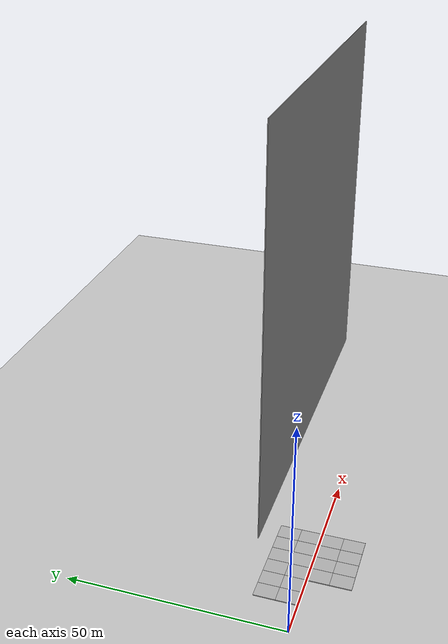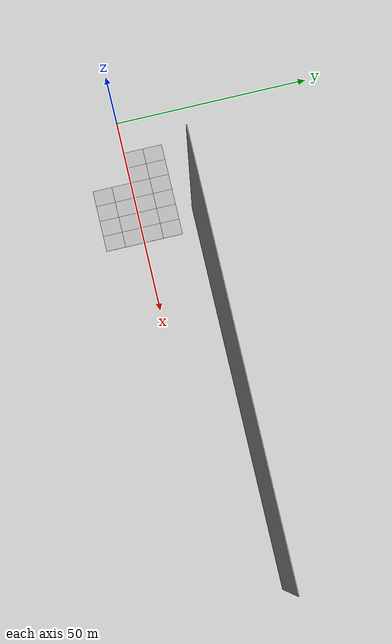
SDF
<sdf version="1.4">
 <world name="default">
  <model name="ground_plane">
   <static>1</static>
   <link name="link">
    <collision name="collision">
     <geometry><plane><normal>0 0 1</normal><size>100 100</size></plane></geometry>
     <surface><friction><ode><mu>100</mu><mu2>50</mu2></ode></friction></surface>
    </collision>
    <visual name="visual">
     <cast_shadows>0</cast_shadows>
     <geometry><plane><normal>0 0 1</normal><size>100 100</size></plane></geometry>
     <material>
      <script><uri>file://media/materials/scripts/gazebo.material</uri><name>Gazebo/Grey</name></script>
     </material>
    </visual>
    <velocity_decay><linear>0</linear><angular>0</angular></velocity_decay>
   </link>
   <pose>17 -17 0 0 -0 0</pose>
  </model>
  <model name="mud_box_3">
   <static>1</static>
   <link name="link">
    <collision name="collision"><geometry><box><size>8 10 0.2</size></box></geometry></collision>
    <visual name="visual_1">
     <pose>-2 2.5 0 0 -0 0</pose>
     <cast_shadows>0</cast_shadows>
     <geometry><box><size>4 5 0.2</size></box></geometry>
     <material>
      <script>
       <uri>model://mud_box/materials/scripts</uri>
       <uri>model://mud_box/materials/textures</uri>
       <name>vrc/mud</name>
      </script>
     </material>
    </visual>
    <visual name="visual_2">
     <pose>2 2.5 0 0 -0 0</pose>
     <cast_shadows>0</cast_shadows>
     <geometry><box><size>4 5 0.2</size></box></geometry>
     <material>
      <script>
       <uri>model://mud_box/materials/scripts</uri>
       <uri>model://mud_box/materials/textures</uri>
       <name>vrc/mud</name>
      </script>
     </material>
    </visual>
    <visual name="visual_3">
     <pose>2 -2.5 0 0 -0 0</pose>
     <cast_shadows>0</cast_shadows>
     <geometry><box><size>4 5 0.2</size></box></geometry>
     <material>
      <script>
       <uri>model://mud_box/materials/scripts</uri>
       <uri>model://mud_box/materials/textures</uri>
       <name>vrc/mud</name>
      </script>
     </material>
    </visual>
    <visual name="visual_4">
     <pose>-2 -2.5 0 0 -0 0</pose>
     <cast_shadows>0</cast_shadows>
     <geometry><box><size>4 5 0.2</size></box></geometry>
     <material>
      <script>
       <uri>model://mud_box/materials/scripts</uri>
       <uri>model://mud_box/materials/textures</uri>
       <name>vrc/mud</name>
      </script>
     </material>
    </visual>
    <velocity_decay><linear>0</linear><angular>0</angular></velocity_decay>
   </link>
   <pose>12 5 0 0 -0 0</pose>
  </model>
  <model name="mud_box_10">
   <static>1</static>
   <link name="link">
    <collision name="collision"><geometry><box><size>8 10 0.2</size></box></geometry></collision>
    <visual name="visual_1">
     <pose>-2 2.5 0 0 -0 0</pose>
     <cast_shadows>0</cast_shadows>
     <geometry><box><size>4 5 0.2</size></box></geometry>
     <material>
      <script>
       <uri>model://mud_box/materials/scripts</uri>
       <uri>model://mud_box/materials/textures</uri>
       <name>vrc/mud</name>
      </script>
     </material>
    </visual>
    <visual name="visual_2">
     <pose>2 2.5 0 0 -0 0</pose>
     <cast_shadows>0</cast_shadows>
     <geometry><box><size>4 5 0.2</size></box></geometry>
     <material>
      <script>
       <uri>model://mud_box/materials/scripts</uri>
       <uri>model://mud_box/materials/textures</uri>
       <name>vrc/mud</name>
      </script>
     </material>
    </visual>
    <visual name="visual_3">
     <pose>2 -2.5 0 0 -0 0</pose>
     <cast_shadows>0</cast_shadows>
     <geometry><box><size>4 5 0.2</size></box></geometry>
     <material>
      <script>
       <uri>model://mud_box/materials/scripts</uri>
       <uri>model://mud_box/materials/textures</uri>
       <name>vrc/mud</name>
      </script>
     </material>
    </visual>
    <visual name="visual_4">
     <pose>-2 -2.5 0 0 -0 0</pose>
     <cast_shadows>0</cast_shadows>
     <geometry><box><size>4 5 0.2</size></box></geometry>
     <material>
      <script>
       <uri>model://mud_box/materials/scripts</uri>
       <uri>model://mud_box/materials/textures</uri>
       <name>vrc/mud</name>
      </script>
     </material>
    </visual>
    <velocity_decay><linear>0</linear><angular>0</angular></velocity_decay>
   </link>
   <pose>20 5 0 0 -0 0</pose>
  </model>
  <model name="mud_box_11">
   <static>1</static>
   <link name="link">
    <collision name="collision"><geometry><box><size>8 10 0.2</size></box></geometry></collision>
    <visual name="visual_1">
     <pose>-2 2.5 0 0 -0 0</pose>
     <cast_shadows>0</cast_shadows>
     <geometry><box><size>4 5 0.2</size></box></geometry>
     <material>
      <script>
       <uri>model://mud_box/materials/scripts</uri>
       <uri>model://mud_box/materials/textures</uri>
       <name>vrc/mud</name>
      </script>
     </material>
    </visual>
    <visual name="visual_2">
     <pose>2 2.5 0 0 -0 0</pose>
     <cast_shadows>0</cast_shadows>
     <geometry><box><size>4 5 0.2</size></box></geometry>
     <material>
      <script>
       <uri>model://mud_box/materials/scripts</uri>
       <uri>model://mud_box/materials/textures</uri>
       <name>vrc/mud</name>
      </script>
     </material>
    </visual>
    <visual name="visual_3">
     <pose>2 -2.5 0 0 -0 0</pose>
     <cast_shadows>0</cast_shadows>
     <geometry><box><size>4 5 0.2</size></box></geometry>
     <material>
      <script>
       <uri>model://mud_box/materials/scripts</uri>
       <uri>model://mud_box/materials/textures</uri>
       <name>vrc/mud</name>
      </script>
     </material>
    </visual>
    <visual name="visual_4">
     <pose>-2 -2.5 0 0 -0 0</pose>
     <cast_shadows>0</cast_shadows>
     <geometry><box><size>4 5 0.2</size></box></geometry>
     <material>
      <script>
       <uri>model://mud_box/materials/scripts</uri>
       <uri>model://mud_box/materials/textures</uri>
       <name>vrc/mud</name>
      </script>
     </material>
    </visual>
    <velocity_decay><linear>0</linear><angular>0</angular></velocity_decay>
   </link>
   <pose>20 -5 0 0 -0 0</pose>
  </model>
  <model name="mud_box_12">
   <static>1</static>
   <link name="link">
    <collision name="collision"><geometry><box><size>8 10 0.2</size></box></geometry></collision>
    <visual name="visual_1">
     <pose>-2 2.5 0 0 -0 0</pose>
     <cast_shadows>0</cast_shadows>
     <geometry><box><size>4 5 0.2</size></box></geometry>
     <material>
      <script>
       <uri>model://mud_box/materials/scripts</uri>
       <uri>model://mud_box/materials/textures</uri>
       <name>vrc/mud</name>
      </script>
     </material>
    </visual>
    <visual name="visual_2">
     <pose>2 2.5 0 0 -0 0</pose>
     <cast_shadows>0</cast_shadows>
     <geometry><box><size>4 5 0.2</size></box></geometry>
     <material>
      <script>
       <uri>model://mud_box/materials/scripts</uri>
       <uri>model://mud_box/materials/textures</uri>
       <name>vrc/mud</name>
      </script>
     </material>
    </visual>
    <visual name="visual_3">
     <pose>2 -2.5 0 0 -0 0</pose>
     <cast_shadows>0</cast_shadows>
     <geometry><box><size>4 5 0.2</size></box></geometry>
     <material>
      <script>
       <uri>model://mud_box/materials/scripts</uri>
       <uri>model://mud_box/materials/textures</uri>
       <name>vrc/mud</name>
      </script>
     </material>
    </visual>
    <visual name="visual_4">
     <pose>-2 -2.5 0 0 -0 0</pose>
     <cast_shadows>0</cast_shadows>
     <geometry><box><size>4 5 0.2</size></box></geometry>
     <material>
      <script>
       <uri>model://mud_box/materials/scripts</uri>
       <uri>model://mud_box/materials/textures</uri>
       <name>vrc/mud</name>
      </script>
     </material>
    </visual>
    <velocity_decay><linear>0</linear><angular>0</angular></velocity_decay>
   </link>
   <pose>28 5 0 0 -0 0</pose>
  </model>
  <model name="mud_box_13">
   <static>1</static>
   <link name="link">
    <collision name="collision"><geometry><box><size>8 10 0.2</size></box></geometry></collision>
    <visual name="visual_1">
     <pose>-2 2.5 0 0 -0 0</pose>
     <cast_shadows>0</cast_shadows>
     <geometry><box><size>4 5 0.2</size></box></geometry>
     <material>
      <script>
       <uri>model://mud_box/materials/scripts</uri>
       <uri>model://mud_box/materials/textures</uri>
       <name>vrc/mud</name>
      </script>
     </material>
    </visual>
    <visual name="visual_2">
     <pose>2 2.5 0 0 -0 0</pose>
     <cast_shadows>0</cast_shadows>
     <geometry><box><size>4 5 0.2</size></box></geometry>
     <material>
      <script>
       <uri>model://mud_box/materials/scripts</uri>
       <uri>model://mud_box/materials/textures</uri>
       <name>vrc/mud</name>
      </script>
     </material>
    </visual>
    <visual name="visual_3">
     <pose>2 -2.5 0 0 -0 0</pose>
     <cast_shadows>0</cast_shadows>
     <geometry><box><size>4 5 0.2</size></box></geometry>
     <material>
      <script>
       <uri>model://mud_box/materials/scripts</uri>
       <uri>model://mud_box/materials/textures</uri>
       <name>vrc/mud</name>
      </script>
     </material>
    </visual>
    <visual name="visual_4">
     <pose>-2 -2.5 0 0 -0 0</pose>
     <cast_shadows>0</cast_shadows>
     <geometry><box><size>4 5 0.2</size></box></geometry>
     <material>
      <script>
       <uri>model://mud_box/materials/scripts</uri>
       <uri>model://mud_box/materials/textures</uri>
       <name>vrc/mud</name>
      </script>
     </material>
    </visual>
    <velocity_decay><linear>0</linear><angular>0</angular></velocity_decay>
   </link>
   <pose>28 -5 0 0 -0 0</pose>
  </model>
  <model name="grey_wall_2_1">
   <static>1</static>
   <link name="link">
    <pose>0 0 50 0 -0 0</pose>
    <collision name="collision"><geometry><box><size>100 0.2 100</size></box></geometry></collision>
    <visual name="visual">
     <cast_shadows>0</cast_shadows>
     <geometry><box><size>100 0.2 100</size></box></geometry>
     <material>
      <script>
       <uri>model://grey_wall/materials/scripts</uri>
       <uri>model://grey_wall/materials/textures</uri>
       <name>vrc/grey_wall</name>
      </script>
     </material>
    </visual>
    <velocity_decay><linear>0</linear><angular>0</angular></velocity_decay>
   </link>
   <pose>76 14 0 0 -0 0</pose>
  </model>
 </world>
</sdf>
